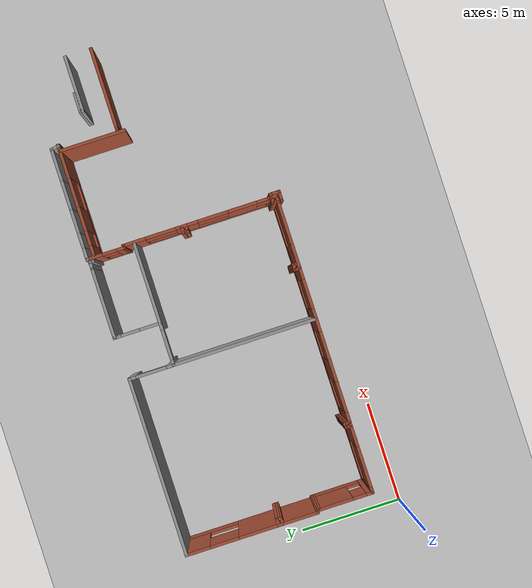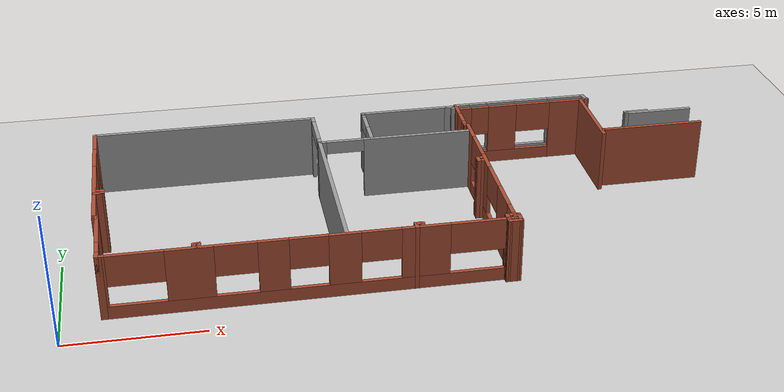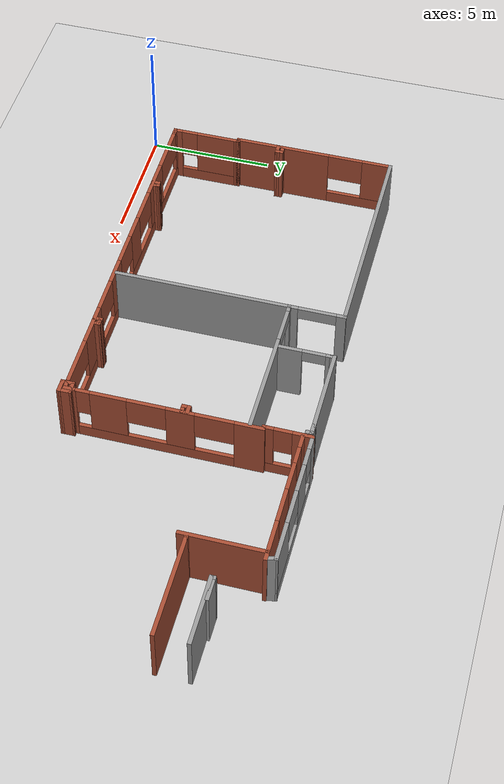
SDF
<sdf version="1.6">
 <world name="default">
  <model name="ground_plane">
   <static>1</static>
   <link name="link">
    <collision name="collision">
     <geometry><plane><normal>0 0 1</normal><size>100 100</size></plane></geometry>
     <surface><friction><ode><mu>100</mu><mu2>50</mu2></ode></friction></surface>
    </collision>
    <visual name="visual">
     <cast_shadows>0</cast_shadows>
     <geometry><plane><normal>0 0 1</normal><size>100 100</size></plane></geometry>
     <material>
      <script><uri>file://media/materials/scripts/gazebo.material</uri><name>Gazebo/Grey</name></script>
     </material>
    </visual>
   </link>
  </model>
  <model name="CVSSP">
   <pose>23.8714 24.094 0 0 -0 0</pose>
   <link name="Wall_507">
    <collision name="Wall_507_Collision">
     <geometry><box><size>3.25 0.15 2.5</size></box></geometry>
     <pose>0 0 1.25 0 -0 0</pose>
    </collision>
    <visual name="Wall_507_Visual">
     <pose>0 0 1.25 0 -0 0</pose>
     <geometry><box><size>3.25 0.15 2.5</size></box></geometry>
     <material>
      <script><uri>file://media/materials/scripts/gazebo.material</uri><name>Gazebo/Bricks</name></script>
      <ambient>1 1 1 1</ambient>
     </material>
    </visual>
    <pose>-2.87053 -15.3773 0 0 -0 1.5708</pose>
   </link>
   <link name="Wall_538">
    <pose>-5.361 -13.4582 0 0 -0 0</pose>
    <visual name="Wall_538_Visual_0">
     <pose>-2.43267 0 1.25 0 -0 0</pose>
     <geometry><box><size>0.634665 0.15 2.5</size></box></geometry>
     <material>
      <script><uri>file://media/materials/scripts/gazebo.material</uri><name>Gazebo/Grey</name></script>
      <ambient>0.588235 0.588235 0.588235 1</ambient>
     </material>
    </visual>
    <collision name="Wall_538_Collision_0">
     <geometry><box><size>0.634665 0.15 2.5</size></box></geometry>
     <pose>-2.43267 0 1.25 0 -0 0</pose>
    </collision>
    <visual name="Wall_538_Visual_1">
     <pose>0.317332 0 0.25 0 -0 0</pose>
     <geometry><box><size>4.86533 0.15 0.5</size></box></geometry>
     <material>
      <script><uri>file://media/materials/scripts/gazebo.material</uri><name>Gazebo/Grey</name></script>
      <ambient>0.588235 0.588235 0.588235 1</ambient>
     </material>
    </visual>
    <collision name="Wall_538_Collision_1">
     <geometry><box><size>4.86533 0.15 0.5</size></box></geometry>
     <pose>0.317332 0 0.25 0 -0 0</pose>
    </collision>
    <visual name="Wall_538_Visual_2">
     <pose>-0.810818 0 1.5 0 -0 0</pose>
     <geometry><box><size>1.15893 0.15 2</size></box></geometry>
     <material>
      <script><uri>file://media/materials/scripts/gazebo.material</uri><name>Gazebo/Grey</name></script>
      <ambient>0.588235 0.588235 0.588235 1</ambient>
     </material>
    </visual>
    <collision name="Wall_538_Collision_2">
     <geometry><box><size>1.15893 0.15 2</size></box></geometry>
     <pose>-0.810818 0 1.5 0 -0 0</pose>
    </collision>
    <visual name="Wall_538_Visual_3">
     <pose>1.95518 0 1.5 0 -0 0</pose>
     <geometry><box><size>1.58965 0.15 2</size></box></geometry>
     <material>
      <script><uri>file://media/materials/scripts/gazebo.material</uri><name>Gazebo/Grey</name></script>
      <ambient>0.588235 0.588235 0.588235 1</ambient>
     </material>
    </visual>
    <collision name="Wall_538_Collision_3">
     <geometry><box><size>1.58965 0.15 2</size></box></geometry>
     <pose>1.95518 0 1.5 0 -0 0</pose>
    </collision>
    <visual name="Wall_538_Visual_4">
     <pose>-1.75281 0 1.9 0 -0 0</pose>
     <geometry><box><size>0.72505 0.15 1.2</size></box></geometry>
     <material>
      <script><uri>file://media/materials/scripts/gazebo.material</uri><name>Gazebo/Grey</name></script>
      <ambient>0.588235 0.588235 0.588235 1</ambient>
     </material>
    </visual>
    <collision name="Wall_538_Collision_4">
     <geometry><box><size>0.72505 0.15 1.2</size></box></geometry>
     <pose>-1.75281 0 1.9 0 -0 0</pose>
    </collision>
    <visual name="Wall_538_Visual_5">
     <pose>0.4645 0 1.9 0 -0 0</pose>
     <geometry><box><size>1.3917 0.15 1.2</size></box></geometry>
     <material>
      <script><uri>file://media/materials/scripts/gazebo.material</uri><name>Gazebo/Grey</name></script>
      <ambient>0.588235 0.588235 0.588235 1</ambient>
     </material>
    </visual>
    <collision name="Wall_538_Collision_5">
     <geometry><box><size>1.3917 0.15 1.2</size></box></geometry>
     <pose>0.4645 0 1.9 0 -0 0</pose>
    </collision>
   </link>
   <link name="Wall_539">
    <collision name="Wall_539_Collision">
     <geometry><box><size>0.505851 0.15 2.5</size></box></geometry>
     <pose>0 0 1.25 0 -0 0</pose>
    </collision>
    <visual name="Wall_539_Visual">
     <pose>0 0 1.25 0 -0 0</pose>
     <geometry><box><size>0.505851 0.15 2.5</size></box></geometry>
     <material>
      <script><uri>file://media/materials/scripts/gazebo.material</uri><name>Gazebo/Grey</name></script>
      <ambient>1 1 1 1</ambient>
     </material>
    </visual>
    <pose>-2.64978 -13.6324 0 0 0 -1.3658</pose>
   </link>
   <link name="Wall_541">
    <pose>-8.03948 -14.3557 0 0 0 -1.57468</pose>
    <visual name="Wall_541_Visual_0">
     <pose>-0.567331 0 1.25 0 -0 0</pose>
     <geometry><box><size>0.810426 0.15 2.5</size></box></geometry>
     <material>
      <script><uri>file://media/materials/scripts/gazebo.material</uri><name>Gazebo/Bricks</name></script>
      <ambient>1 1 1 1</ambient>
     </material>
    </visual>
    <collision name="Wall_541_Collision_0">
     <geometry><box><size>0.810426 0.15 2.5</size></box></geometry>
     <pose>-0.567331 0 1.25 0 -0 0</pose>
    </collision>
    <visual name="Wall_541_Visual_1">
     <pose>0.405213 0 0.25 0 -0 0</pose>
     <geometry><box><size>1.13466 0.15 0.5</size></box></geometry>
     <material>
      <script><uri>file://media/materials/scripts/gazebo.material</uri><name>Gazebo/Bricks</name></script>
      <ambient>1 1 1 1</ambient>
     </material>
    </visual>
    <collision name="Wall_541_Collision_1">
     <geometry><box><size>1.13466 0.15 0.5</size></box></geometry>
     <pose>0.405213 0 0.25 0 -0 0</pose>
    </collision>
    <visual name="Wall_541_Visual_2">
     <pose>0.750947 0 1.5 0 -0 0</pose>
     <geometry><box><size>0.443194 0.15 2</size></box></geometry>
     <material>
      <script><uri>file://media/materials/scripts/gazebo.material</uri><name>Gazebo/Bricks</name></script>
      <ambient>1 1 1 1</ambient>
     </material>
    </visual>
    <collision name="Wall_541_Collision_2">
     <geometry><box><size>0.443194 0.15 2</size></box></geometry>
     <pose>0.750947 0 1.5 0 -0 0</pose>
    </collision>
    <visual name="Wall_541_Visual_3">
     <pose>0.183616 0 1.9 0 -0 0</pose>
     <geometry><box><size>0.691468 0.15 1.2</size></box></geometry>
     <material>
      <script><uri>file://media/materials/scripts/gazebo.material</uri><name>Gazebo/Bricks</name></script>
      <ambient>1 1 1 1</ambient>
     </material>
    </visual>
    <collision name="Wall_541_Collision_3">
     <geometry><box><size>0.691468 0.15 1.2</size></box></geometry>
     <pose>0.183616 0 1.9 0 -0 0</pose>
    </collision>
   </link>
   <link name="Wall_542">
    <collision name="Wall_542_Collision">
     <geometry><box><size>0.25 0.15 2.5</size></box></geometry>
     <pose>0 0 1.25 0 -0 0</pose>
    </collision>
    <visual name="Wall_542_Visual">
     <pose>0 0 1.25 0 -0 0</pose>
     <geometry><box><size>0.25 0.15 2.5</size></box></geometry>
     <material>
      <script><uri>file://media/materials/scripts/gazebo.material</uri><name>Gazebo/Bricks</name></script>
      <ambient>1 1 1 1</ambient>
     </material>
    </visual>
    <pose>-7.99297 -15.2533 0 0 -0 0</pose>
   </link>
   <link name="Wall_543">
    <pose>-7.94297 -18.8033 0 0 0 -1.5708</pose>
    <visual name="Wall_543_Visual_0">
     <pose>-3.05686 0 1.25 0 -0 0</pose>
     <geometry><box><size>1.13628 0.15 2.5</size></box></geometry>
     <material>
      <script><uri>file://media/materials/scripts/gazebo.material</uri><name>Gazebo/Bricks</name></script>
      <ambient>1 1 1 1</ambient>
     </material>
    </visual>
    <collision name="Wall_543_Collision_0">
     <geometry><box><size>1.13628 0.15 2.5</size></box></geometry>
     <pose>-3.05686 0 1.25 0 -0 0</pose>
    </collision>
    <visual name="Wall_543_Visual_1">
     <pose>0.568139 0 0.25 0 -0 0</pose>
     <geometry><box><size>6.11372 0.15 0.5</size></box></geometry>
     <material>
      <script><uri>file://media/materials/scripts/gazebo.material</uri><name>Gazebo/Bricks</name></script>
      <ambient>1 1 1 1</ambient>
     </material>
    </visual>
    <collision name="Wall_543_Collision_1">
     <geometry><box><size>6.11372 0.15 0.5</size></box></geometry>
     <pose>0.568139 0 0.25 0 -0 0</pose>
    </collision>
    <visual name="Wall_543_Visual_2">
     <pose>-0.462946 0 1.5 0 -0 0</pose>
     <geometry><box><size>1.07655 0.15 2</size></box></geometry>
     <material>
      <script><uri>file://media/materials/scripts/gazebo.material</uri><name>Gazebo/Bricks</name></script>
      <ambient>1 1 1 1</ambient>
     </material>
    </visual>
    <collision name="Wall_543_Collision_2">
     <geometry><box><size>1.07655 0.15 2</size></box></geometry>
     <pose>-0.462946 0 1.5 0 -0 0</pose>
    </collision>
    <visual name="Wall_543_Visual_3">
     <pose>2.25573 0 1.5 0 -0 0</pose>
     <geometry><box><size>1.39706 0.15 2</size></box></geometry>
     <material>
      <script><uri>file://media/materials/scripts/gazebo.material</uri><name>Gazebo/Bricks</name></script>
      <ambient>1 1 1 1</ambient>
     </material>
    </visual>
    <collision name="Wall_543_Collision_3">
     <geometry><box><size>1.39706 0.15 2</size></box></geometry>
     <pose>2.25573 0 1.5 0 -0 0</pose>
    </collision>
    <visual name="Wall_543_Visual_4">
     <pose>2.25573 0 1.5 0 -0 0</pose>
     <geometry><box><size>1.39706 0.15 2</size></box></geometry>
     <material>
      <script><uri>file://media/materials/scripts/gazebo.material</uri><name>Gazebo/Bricks</name></script>
      <ambient>1 1 1 1</ambient>
     </material>
    </visual>
    <collision name="Wall_543_Collision_4">
     <geometry><box><size>1.39706 0.15 2</size></box></geometry>
     <pose>2.25573 0 1.5 0 -0 0</pose>
    </collision>
    <visual name="Wall_543_Visual_5">
     <pose>-1.74497 0 1.9 0 -0 0</pose>
     <geometry><box><size>1.4875 0.15 1.2</size></box></geometry>
     <material>
      <script><uri>file://media/materials/scripts/gazebo.material</uri><name>Gazebo/Bricks</name></script>
      <ambient>1 1 1 1</ambient>
     </material>
    </visual>
    <collision name="Wall_543_Collision_5">
     <geometry><box><size>1.4875 0.15 1.2</size></box></geometry>
     <pose>-1.74497 0 1.9 0 -0 0</pose>
    </collision>
    <visual name="Wall_543_Visual_6">
     <pose>0.816261 0 1.9 0 -0 0</pose>
     <geometry><box><size>1.48187 0.15 1.2</size></box></geometry>
     <material>
      <script><uri>file://media/materials/scripts/gazebo.material</uri><name>Gazebo/Bricks</name></script>
      <ambient>1 1 1 1</ambient>
     </material>
    </visual>
    <collision name="Wall_543_Collision_6">
     <geometry><box><size>1.48187 0.15 1.2</size></box></geometry>
     <pose>0.816261 0 1.9 0 -0 0</pose>
    </collision>
    <visual name="Wall_543_Visual_7">
     <pose>3.28963 0 1.9 0 -0 0</pose>
     <geometry><box><size>0.670742 0.15 1.2</size></box></geometry>
     <material>
      <script><uri>file://media/materials/scripts/gazebo.material</uri><name>Gazebo/Bricks</name></script>
      <ambient>1 1 1 1</ambient>
     </material>
    </visual>
    <collision name="Wall_543_Collision_7">
     <geometry><box><size>0.670742 0.15 1.2</size></box></geometry>
     <pose>3.28963 0 1.9 0 -0 0</pose>
    </collision>
    <visual name="Wall_543_Visual_8">
     <pose>3.28963 0 1.9 0 -0 0</pose>
     <geometry><box><size>0.670742 0.15 1.2</size></box></geometry>
     <material>
      <script><uri>file://media/materials/scripts/gazebo.material</uri><name>Gazebo/Bricks</name></script>
      <ambient>1 1 1 1</ambient>
     </material>
    </visual>
    <collision name="Wall_543_Collision_8">
     <geometry><box><size>0.670742 0.15 1.2</size></box></geometry>
     <pose>3.28963 0 1.9 0 -0 0</pose>
    </collision>
   </link>
   <link name="Wall_544">
    <collision name="Wall_544_Collision">
     <geometry><box><size>0.5 0.15 2.5</size></box></geometry>
     <pose>0 0 1.25 0 -0 0</pose>
    </collision>
    <visual name="Wall_544_Visual">
     <pose>0 0 1.25 0 -0 0</pose>
     <geometry><box><size>0.5 0.15 2.5</size></box></geometry>
     <material>
      <script><uri>file://media/materials/scripts/gazebo.material</uri><name>Gazebo/Bricks</name></script>
      <ambient>1 1 1 1</ambient>
     </material>
    </visual>
    <pose>-7.94297 -22.5283 0 0 0 -1.5708</pose>
   </link>
   <link name="Wall_545">
    <pose>-15.118 -22.7033 0 0 -0 3.14159</pose>
    <visual name="Wall_545_Visual_0">
     <pose>-7.03884 0 1.25 0 -0 0</pose>
     <geometry><box><size>0.42232 0.15 2.5</size></box></geometry>
     <material>
      <script><uri>file://media/materials/scripts/gazebo.material</uri><name>Gazebo/Bricks</name></script>
      <ambient>1 1 1 1</ambient>
     </material>
    </visual>
    <collision name="Wall_545_Collision_0">
     <geometry><box><size>0.42232 0.15 2.5</size></box></geometry>
     <pose>-7.03884 0 1.25 0 -0 0</pose>
    </collision>
    <visual name="Wall_545_Visual_1">
     <pose>0.21116 0 0.25 0 -0 0</pose>
     <geometry><box><size>14.0777 0.15 0.5</size></box></geometry>
     <material>
      <script><uri>file://media/materials/scripts/gazebo.material</uri><name>Gazebo/Bricks</name></script>
      <ambient>1 1 1 1</ambient>
     </material>
    </visual>
    <collision name="Wall_545_Collision_1">
     <geometry><box><size>14.0777 0.15 0.5</size></box></geometry>
     <pose>0.21116 0 0.25 0 -0 0</pose>
    </collision>
    <visual name="Wall_545_Visual_2">
     <pose>-3.98026 0 1.5 0 -0 0</pose>
     <geometry><box><size>1.72991 0.15 2</size></box></geometry>
     <material>
      <script><uri>file://media/materials/scripts/gazebo.material</uri><name>Gazebo/Bricks</name></script>
      <ambient>1 1 1 1</ambient>
     </material>
    </visual>
    <collision name="Wall_545_Collision_2">
     <geometry><box><size>1.72991 0.15 2</size></box></geometry>
     <pose>-3.98026 0 1.5 0 -0 0</pose>
    </collision>
    <visual name="Wall_545_Visual_3">
     <pose>-1.12108 0 1.5 0 -0 0</pose>
     <geometry><box><size>1.14417 0.15 2</size></box></geometry>
     <material>
      <script><uri>file://media/materials/scripts/gazebo.material</uri><name>Gazebo/Bricks</name></script>
      <ambient>1 1 1 1</ambient>
     </material>
    </visual>
    <collision name="Wall_545_Collision_3">
     <geometry><box><size>1.14417 0.15 2</size></box></geometry>
     <pose>-1.12108 0 1.5 0 -0 0</pose>
    </collision>
    <visual name="Wall_545_Visual_4">
     <pose>1.34801 0 1.5 0 -0 0</pose>
     <geometry><box><size>1.07936 0.15 2</size></box></geometry>
     <material>
      <script><uri>file://media/materials/scripts/gazebo.material</uri><name>Gazebo/Bricks</name></script>
      <ambient>1 1 1 1</ambient>
     </material>
    </visual>
    <collision name="Wall_545_Collision_4">
     <geometry><box><size>1.07936 0.15 2</size></box></geometry>
     <pose>1.34801 0 1.5 0 -0 0</pose>
    </collision>
    <visual name="Wall_545_Visual_5">
     <pose>4.2027 0 1.5 0 -0 0</pose>
     <geometry><box><size>1.66909 0.15 2</size></box></geometry>
     <material>
      <script><uri>file://media/materials/scripts/gazebo.material</uri><name>Gazebo/Bricks</name></script>
      <ambient>1 1 1 1</ambient>
     </material>
    </visual>
    <collision name="Wall_545_Collision_5">
     <geometry><box><size>1.66909 0.15 2</size></box></geometry>
     <pose>4.2027 0 1.5 0 -0 0</pose>
    </collision>
    <visual name="Wall_545_Visual_6">
     <pose>7.13335 0 1.5 0 -0 0</pose>
     <geometry><box><size>0.233292 0.15 2</size></box></geometry>
     <material>
      <script><uri>file://media/materials/scripts/gazebo.material</uri><name>Gazebo/Bricks</name></script>
      <ambient>1 1 1 1</ambient>
     </material>
    </visual>
    <collision name="Wall_545_Collision_6">
     <geometry><box><size>0.233292 0.15 2</size></box></geometry>
     <pose>7.13335 0 1.5 0 -0 0</pose>
    </collision>
    <visual name="Wall_545_Visual_7">
     <pose>-5.83645 0 1.9 0 -0 0</pose>
     <geometry><box><size>1.98247 0.15 1.2</size></box></geometry>
     <material>
      <script><uri>file://media/materials/scripts/gazebo.material</uri><name>Gazebo/Bricks</name></script>
      <ambient>1 1 1 1</ambient>
     </material>
    </visual>
    <collision name="Wall_545_Collision_7">
     <geometry><box><size>1.98247 0.15 1.2</size></box></geometry>
     <pose>-5.83645 0 1.9 0 -0 0</pose>
    </collision>
    <visual name="Wall_545_Visual_8">
     <pose>-2.40424 0 1.9 0 -0 0</pose>
     <geometry><box><size>1.42213 0.15 1.2</size></box></geometry>
     <material>
      <script><uri>file://media/materials/scripts/gazebo.material</uri><name>Gazebo/Bricks</name></script>
      <ambient>1 1 1 1</ambient>
     </material>
    </visual>
    <collision name="Wall_545_Collision_8">
     <geometry><box><size>1.42213 0.15 1.2</size></box></geometry>
     <pose>-2.40424 0 1.9 0 -0 0</pose>
    </collision>
    <visual name="Wall_545_Visual_9">
     <pose>0.129664 0 1.9 0 -0 0</pose>
     <geometry><box><size>1.35733 0.15 1.2</size></box></geometry>
     <material>
      <script><uri>file://media/materials/scripts/gazebo.material</uri><name>Gazebo/Bricks</name></script>
      <ambient>1 1 1 1</ambient>
     </material>
    </visual>
    <collision name="Wall_545_Collision_9">
     <geometry><box><size>1.35733 0.15 1.2</size></box></geometry>
     <pose>0.129664 0 1.9 0 -0 0</pose>
    </collision>
    <visual name="Wall_545_Visual_10">
     <pose>2.62792 0 1.9 0 -0 0</pose>
     <geometry><box><size>1.48046 0.15 1.2</size></box></geometry>
     <material>
      <script><uri>file://media/materials/scripts/gazebo.material</uri><name>Gazebo/Bricks</name></script>
      <ambient>1 1 1 1</ambient>
     </material>
    </visual>
    <collision name="Wall_545_Collision_10">
     <geometry><box><size>1.48046 0.15 1.2</size></box></geometry>
     <pose>2.62792 0 1.9 0 -0 0</pose>
    </collision>
    <visual name="Wall_545_Visual_11">
     <pose>6.02698 0 1.9 0 -0 0</pose>
     <geometry><box><size>1.97946 0.15 1.2</size></box></geometry>
     <material>
      <script><uri>file://media/materials/scripts/gazebo.material</uri><name>Gazebo/Bricks</name></script>
      <ambient>1 1 1 1</ambient>
     </material>
    </visual>
    <collision name="Wall_545_Collision_11">
     <geometry><box><size>1.97946 0.15 1.2</size></box></geometry>
     <pose>6.02698 0 1.9 0 -0 0</pose>
    </collision>
   </link>
   <link name="Wall_546">
    <collision name="Wall_546_Collision">
     <geometry><box><size>0.25 0.15 2.5</size></box></geometry>
     <pose>0 0 1.25 0 -0 0</pose>
    </collision>
    <visual name="Wall_546_Visual">
     <pose>0 0 1.25 0 -0 0</pose>
     <geometry><box><size>0.25 0.15 2.5</size></box></geometry>
     <material>
      <script><uri>file://media/materials/scripts/gazebo.material</uri><name>Gazebo/Bricks</name></script>
      <ambient>1 1 1 1</ambient>
     </material>
    </visual>
    <pose>-22.343 -22.7033 0 0 -0 3.14159</pose>
   </link>
   <link name="Wall_547">
    <pose>-22.393 -21.4033 0 0 -0 1.5708</pose>
    <visual name="Wall_547_Visual_0">
     <pose>-1.18725 0 1.25 0 -0 0</pose>
     <geometry><box><size>0.375498 0.15 2.5</size></box></geometry>
     <material>
      <script><uri>file://media/materials/scripts/gazebo.material</uri><name>Gazebo/Bricks</name></script>
      <ambient>1 1 1 1</ambient>
     </material>
    </visual>
    <collision name="Wall_547_Collision_0">
     <geometry><box><size>0.375498 0.15 2.5</size></box></geometry>
     <pose>-1.18725 0 1.25 0 -0 0</pose>
    </collision>
    <visual name="Wall_547_Visual_1">
     <pose>0.187749 0 0.25 0 -0 0</pose>
     <geometry><box><size>2.3745 0.15 0.5</size></box></geometry>
     <material>
      <script><uri>file://media/materials/scripts/gazebo.material</uri><name>Gazebo/Bricks</name></script>
      <ambient>1 1 1 1</ambient>
     </material>
    </visual>
    <collision name="Wall_547_Collision_1">
     <geometry><box><size>2.3745 0.15 0.5</size></box></geometry>
     <pose>0.187749 0 0.25 0 -0 0</pose>
    </collision>
    <visual name="Wall_547_Visual_2">
     <pose>0.509982 0 1.5 0 -0 0</pose>
     <geometry><box><size>1.73004 0.15 2</size></box></geometry>
     <material>
      <script><uri>file://media/materials/scripts/gazebo.material</uri><name>Gazebo/Bricks</name></script>
      <ambient>1 1 1 1</ambient>
     </material>
    </visual>
    <collision name="Wall_547_Collision_2">
     <geometry><box><size>1.73004 0.15 2</size></box></geometry>
     <pose>0.509982 0 1.5 0 -0 0</pose>
    </collision>
    <visual name="Wall_547_Visual_3">
     <pose>-0.677269 0 1.9 0 -0 0</pose>
     <geometry><box><size>0.644466 0.15 1.2</size></box></geometry>
     <material>
      <script><uri>file://media/materials/scripts/gazebo.material</uri><name>Gazebo/Bricks</name></script>
      <ambient>1 1 1 1</ambient>
     </material>
    </visual>
    <collision name="Wall_547_Collision_3">
     <geometry><box><size>0.644466 0.15 1.2</size></box></geometry>
     <pose>-0.677269 0 1.9 0 -0 0</pose>
    </collision>
   </link>
   <link name="Wall_548">
    <collision name="Wall_548_Collision">
     <geometry><box><size>0.25 0.15 2.5</size></box></geometry>
     <pose>0 0 1.25 0 -0 0</pose>
    </collision>
    <visual name="Wall_548_Visual">
     <pose>0 0 1.25 0 -0 0</pose>
     <geometry><box><size>0.25 0.15 2.5</size></box></geometry>
     <material>
      <script><uri>file://media/materials/scripts/gazebo.material</uri><name>Gazebo/Bricks</name></script>
      <ambient>1 1 1 1</ambient>
     </material>
    </visual>
    <pose>-22.393 -20.0533 0 0 -0 1.5708</pose>
   </link>
   <link name="Wall_549">
    <collision name="Wall_549_Collision">
     <geometry><box><size>0.25 0.15 2.5</size></box></geometry>
     <pose>0 0 1.25 0 -0 0</pose>
    </collision>
    <visual name="Wall_549_Visual">
     <pose>0 0 1.25 0 -0 0</pose>
     <geometry><box><size>0.25 0.15 2.5</size></box></geometry>
     <material>
      <script><uri>file://media/materials/scripts/gazebo.material</uri><name>Gazebo/Bricks</name></script>
      <ambient>1 1 1 1</ambient>
     </material>
    </visual>
    <pose>-22.443 -20.0033 0 0 -0 3.14159</pose>
   </link>
   <link name="Wall_550">
    <pose>-22.493 -16.8108 0 0 -0 1.5708</pose>
    <visual name="Wall_550_Visual_0">
     <pose>-1.31523 0 1.25 0 -0 0</pose>
     <geometry><box><size>3.90453 0.15 2.5</size></box></geometry>
     <material>
      <script><uri>file://media/materials/scripts/gazebo.material</uri><name>Gazebo/Bricks</name></script>
      <ambient>1 1 1 1</ambient>
     </material>
    </visual>
    <collision name="Wall_550_Collision_0">
     <geometry><box><size>3.90453 0.15 2.5</size></box></geometry>
     <pose>-1.31523 0 1.25 0 -0 0</pose>
    </collision>
    <visual name="Wall_550_Visual_1">
     <pose>1.95226 0 0.25 0 -0 0</pose>
     <geometry><box><size>2.63045 0.15 0.5</size></box></geometry>
     <material>
      <script><uri>file://media/materials/scripts/gazebo.material</uri><name>Gazebo/Bricks</name></script>
      <ambient>1 1 1 1</ambient>
     </material>
    </visual>
    <collision name="Wall_550_Collision_1">
     <geometry><box><size>2.63045 0.15 0.5</size></box></geometry>
     <pose>1.95226 0 0.25 0 -0 0</pose>
    </collision>
    <visual name="Wall_550_Visual_2">
     <pose>2.66009 0 1.5 0 -0 0</pose>
     <geometry><box><size>1.2148 0.15 2</size></box></geometry>
     <material>
      <script><uri>file://media/materials/scripts/gazebo.material</uri><name>Gazebo/Bricks</name></script>
      <ambient>1 1 1 1</ambient>
     </material>
    </visual>
    <collision name="Wall_550_Collision_2">
     <geometry><box><size>1.2148 0.15 2</size></box></geometry>
     <pose>2.66009 0 1.5 0 -0 0</pose>
    </collision>
    <visual name="Wall_550_Visual_3">
     <pose>1.34487 0 1.9 0 -0 0</pose>
     <geometry><box><size>1.41565 0.15 1.2</size></box></geometry>
     <material>
      <script><uri>file://media/materials/scripts/gazebo.material</uri><name>Gazebo/Bricks</name></script>
      <ambient>1 1 1 1</ambient>
     </material>
    </visual>
    <collision name="Wall_550_Collision_3">
     <geometry><box><size>1.41565 0.15 1.2</size></box></geometry>
     <pose>1.34487 0 1.9 0 -0 0</pose>
    </collision>
   </link>
   <link name="Wall_551">
    <collision name="Wall_551_Collision">
     <geometry><box><size>8.71502 0.15 2.5</size></box></geometry>
     <pose>0 0 1.25 0 -0 0</pose>
    </collision>
    <visual name="Wall_551_Visual">
     <pose>0 0 1.25 0 -0 0</pose>
     <geometry><box><size>8.71502 0.15 2.5</size></box></geometry>
     <material>
      <script><uri>file://media/materials/scripts/gazebo.material</uri><name>Gazebo/Grey</name></script>
      <ambient>0.588235 0.588235 0.588235 1</ambient>
     </material>
    </visual>
    <pose>-18.2105 -13.6008 0 0 -0 0</pose>
   </link>
   <link name="Wall_552">
    <pose>-13.9279 -14.6858 0 0 0 -1.57076</pose>
    <visual name="Wall_552_Visual_0">
     <pose>-0.953762 0 1.25 0 -0 0</pose>
     <geometry><box><size>0.377528 0.15 2.5</size></box></geometry>
     <material>
      <script><uri>file://media/materials/scripts/gazebo.material</uri><name>Gazebo/Grey</name></script>
      <ambient>0.588235 0.588235 0.588235 1</ambient>
     </material>
    </visual>
    <collision name="Wall_552_Collision_0">
     <geometry><box><size>0.377528 0.15 2.5</size></box></geometry>
     <pose>-0.953762 0 1.25 0 -0 0</pose>
    </collision>
    <visual name="Wall_552_Visual_1">
     <pose>0.934646 0 1.25 0 -0 0</pose>
     <geometry><box><size>0.415759 0.15 2.5</size></box></geometry>
     <material>
      <script><uri>file://media/materials/scripts/gazebo.material</uri><name>Gazebo/Grey</name></script>
      <ambient>0.588235 0.588235 0.588235 1</ambient>
     </material>
    </visual>
    <collision name="Wall_552_Collision_1">
     <geometry><box><size>0.415759 0.15 2.5</size></box></geometry>
     <pose>0.934646 0 1.25 0 -0 0</pose>
    </collision>
    <visual name="Wall_552_Visual_2">
     <pose>-0.019115 0 2.25 0 -0 0</pose>
     <geometry><box><size>1.49176 0.15 0.5</size></box></geometry>
     <material>
      <script><uri>file://media/materials/scripts/gazebo.material</uri><name>Gazebo/Grey</name></script>
      <ambient>0.588235 0.588235 0.588235 1</ambient>
     </material>
    </visual>
    <collision name="Wall_552_Collision_2">
     <geometry><box><size>1.49176 0.15 0.5</size></box></geometry>
     <pose>-0.019115 0 2.25 0 -0 0</pose>
    </collision>
   </link>
   <link name="Wall_553">
    <pose>-10.9854 -15.7533 0 0 0 -3e-06</pose>
    <visual name="Wall_553_Visual_0">
     <pose>-2.85002 0 1.25 0 -0 0</pose>
     <geometry><box><size>0.334935 0.15 2.5</size></box></geometry>
     <material>
      <script><uri>file://media/materials/scripts/gazebo.material</uri><name>Gazebo/Grey</name></script>
      <ambient>0.588235 0.588235 0.588235 1</ambient>
     </material>
    </visual>
    <collision name="Wall_553_Collision_0">
     <geometry><box><size>0.334935 0.15 2.5</size></box></geometry>
     <pose>-2.85002 0 1.25 0 -0 0</pose>
    </collision>
    <visual name="Wall_553_Visual_1">
     <pose>0.893624 0 1.25 0 -0 0</pose>
     <geometry><box><size>4.24773 0.15 2.5</size></box></geometry>
     <material>
      <script><uri>file://media/materials/scripts/gazebo.material</uri><name>Gazebo/Grey</name></script>
      <ambient>0.588235 0.588235 0.588235 1</ambient>
     </material>
    </visual>
    <collision name="Wall_553_Collision_1">
     <geometry><box><size>4.24773 0.15 2.5</size></box></geometry>
     <pose>0.893624 0 1.25 0 -0 0</pose>
    </collision>
    <visual name="Wall_553_Visual_2">
     <pose>-1.9564 0 2.25 0 -0 0</pose>
     <geometry><box><size>1.45231 0.15 0.5</size></box></geometry>
     <material>
      <script><uri>file://media/materials/scripts/gazebo.material</uri><name>Gazebo/Grey</name></script>
      <ambient>0.588235 0.588235 0.588235 1</ambient>
     </material>
    </visual>
    <collision name="Wall_553_Collision_2">
     <geometry><box><size>1.45231 0.15 0.5</size></box></geometry>
     <pose>-1.9564 0 2.25 0 -0 0</pose>
    </collision>
   </link>
   <link name="Wall_566">
    <pose>-11.8858 -14.6877 0 0 -0 1.5708</pose>
    <visual name="Wall_566_Visual_0">
     <pose>-0.599474 0 1.25 0 -0 0</pose>
     <geometry><box><size>1.05105 0.15 2.5</size></box></geometry>
     <material>
      <script><uri>file://media/materials/scripts/gazebo.material</uri><name>Gazebo/Grey</name></script>
      <ambient>0.588235 0.588235 0.588235 1</ambient>
     </material>
    </visual>
    <collision name="Wall_566_Collision_0">
     <geometry><box><size>1.05105 0.15 2.5</size></box></geometry>
     <pose>-0.599474 0 1.25 0 -0 0</pose>
    </collision>
    <visual name="Wall_566_Visual_1">
     <pose>0.975526 0 1.25 0 -0 0</pose>
     <geometry><box><size>0.298948 0.15 2.5</size></box></geometry>
     <material>
      <script><uri>file://media/materials/scripts/gazebo.material</uri><name>Gazebo/Grey</name></script>
      <ambient>0.588235 0.588235 0.588235 1</ambient>
     </material>
    </visual>
    <collision name="Wall_566_Collision_1">
     <geometry><box><size>0.298948 0.15 2.5</size></box></geometry>
     <pose>0.975526 0 1.25 0 -0 0</pose>
    </collision>
    <visual name="Wall_566_Visual_2">
     <pose>0.376052 0 2.25 0 -0 0</pose>
     <geometry><box><size>0.9 0.15 0.5</size></box></geometry>
     <material>
      <script><uri>file://media/materials/scripts/gazebo.material</uri><name>Gazebo/Grey</name></script>
      <ambient>0.588235 0.588235 0.588235 1</ambient>
     </material>
    </visual>
    <collision name="Wall_566_Collision_2">
     <geometry><box><size>0.9 0.15 0.5</size></box></geometry>
     <pose>0.376052 0 2.25 0 -0 0</pose>
    </collision>
   </link>
   <link name="Wall_567">
    <collision name="Wall_567_Collision">
     <geometry><box><size>0.25 0.15 2.5</size></box></geometry>
     <pose>0 0 1.25 0 -0 0</pose>
    </collision>
    <visual name="Wall_567_Visual">
     <pose>0 0 1.25 0 -0 0</pose>
     <geometry><box><size>0.25 0.15 2.5</size></box></geometry>
     <material>
      <script><uri>file://media/materials/scripts/gazebo.material</uri><name>Gazebo/Grey</name></script>
      <ambient>1 1 1 1</ambient>
     </material>
    </visual>
    <pose>-11.8858 -13.5877 0 0 -0 1.5708</pose>
   </link>
   <link name="Wall_568">
    <collision name="Wall_568_Collision">
     <geometry><box><size>3.5 0.15 2.5</size></box></geometry>
     <pose>0 0 1.25 0 -0 0</pose>
    </collision>
    <visual name="Wall_568_Visual">
     <pose>0 0 1.25 0 -0 0</pose>
     <geometry><box><size>3.5 0.15 2.5</size></box></geometry>
     <material>
      <script><uri>file://media/materials/scripts/gazebo.material</uri><name>Gazebo/Grey</name></script>
      <ambient>0.588235 0.588235 0.588235 1</ambient>
     </material>
    </visual>
    <pose>-10.2108 -13.5377 0 0 -0 0</pose>
   </link>
   <link name="Wall_569">
    <collision name="Wall_569_Collision">
     <geometry><box><size>0.476583 0.15 2.5</size></box></geometry>
     <pose>0 0 1.25 0 -0 0</pose>
    </collision>
    <visual name="Wall_569_Visual">
     <pose>0 0 1.25 0 -0 0</pose>
     <geometry><box><size>0.476583 0.15 2.5</size></box></geometry>
     <material>
      <script><uri>file://media/materials/scripts/gazebo.material</uri><name>Gazebo/Grey</name></script>
      <ambient>1 1 1 1</ambient>
     </material>
    </visual>
    <pose>-8.37248 -13.54 0 0 0 -0.014239</pose>
   </link>
   <link name="Wall_570">
    <collision name="Wall_570_Collision">
     <geometry><box><size>0.307067 0.15 2.5</size></box></geometry>
     <pose>0 0 1.25 0 -0 0</pose>
    </collision>
    <visual name="Wall_570_Visual">
     <pose>0 0 1.25 0 -0 0</pose>
     <geometry><box><size>0.307067 0.15 2.5</size></box></geometry>
     <material>
      <script><uri>file://media/materials/scripts/gazebo.material</uri><name>Gazebo/Grey</name></script>
      <ambient>1 1 1 1</ambient>
     </material>
    </visual>
    <pose>-8.20921 -13.6208 0 0 0 -1.5708</pose>
   </link>
   <link name="Wall_571">
    <collision name="Wall_571_Collision">
     <geometry><box><size>0.25 0.15 2.5</size></box></geometry>
     <pose>0 0 1.25 0 -0 0</pose>
    </collision>
    <visual name="Wall_571_Visual">
     <pose>0 0 1.25 0 -0 0</pose>
     <geometry><box><size>0.25 0.15 2.5</size></box></geometry>
     <material>
      <script><uri>file://media/materials/scripts/gazebo.material</uri><name>Gazebo/Grey</name></script>
      <ambient>1 1 1 1</ambient>
     </material>
    </visual>
    <pose>-8.15921 -13.695 0 0 -0 0</pose>
   </link>
   <link name="Wall_578">
    <collision name="Wall_578_Collision">
     <geometry><box><size>7 0.15 2.5</size></box></geometry>
     <pose>0 0 1.25 0 -0 0</pose>
    </collision>
    <visual name="Wall_578_Visual">
     <pose>0 0 1.25 0 -0 0</pose>
     <geometry><box><size>7 0.15 2.5</size></box></geometry>
     <material>
      <script><uri>file://media/materials/scripts/gazebo.material</uri><name>Gazebo/Grey</name></script>
      <ambient>0.588235 0.588235 0.588235 1</ambient>
     </material>
    </visual>
    <pose>-13.9279 -19.1783 0 0 0 -1.5708</pose>
   </link>
   <link name="Wall_596">
    <collision name="Wall_596_Collision">
     <geometry><box><size>4 0.15 2.5</size></box></geometry>
     <pose>0 0 1.25 0 -0 0</pose>
    </collision>
    <visual name="Wall_596_Visual">
     <pose>0 0 1.25 0 -0 0</pose>
     <geometry><box><size>4 0.15 2.5</size></box></geometry>
     <material>
      <script><uri>file://media/materials/scripts/gazebo.material</uri><name>Gazebo/Bricks</name></script>
      <ambient>1 1 1 1</ambient>
     </material>
    </visual>
    <pose>-0.740764 -16.6286 0 0 -0 0</pose>
   </link>
   <link name="Wall_600">
    <collision name="Wall_600_Collision">
     <geometry><box><size>2.75 0.15 2.5</size></box></geometry>
     <pose>0 0 1.25 0 -0 0</pose>
    </collision>
    <visual name="Wall_600_Visual">
     <pose>0 0 1.25 0 -0 0</pose>
     <geometry><box><size>2.75 0.15 2.5</size></box></geometry>
     <material>
      <script><uri>file://media/materials/scripts/gazebo.material</uri><name>Gazebo/Grey</name></script>
      <ambient>0.588235 0.588235 0.588235 1</ambient>
     </material>
    </visual>
    <pose>-0.115764 -15.3784 0 0 -0 3.14159</pose>
   </link>
   <link name="Wall_601">
    <collision name="Wall_601_Collision">
     <geometry><box><size>0.25 0.15 2.5</size></box></geometry>
     <pose>0 0 1.25 0 -0 0</pose>
    </collision>
    <visual name="Wall_601_Visual">
     <pose>0 0 1.25 0 -0 0</pose>
     <geometry><box><size>0.25 0.15 2.5</size></box></geometry>
     <material>
      <script><uri>file://media/materials/scripts/gazebo.material</uri><name>Gazebo/Grey</name></script>
      <ambient>1 1 1 1</ambient>
     </material>
    </visual>
    <pose>-1.41576 -15.3284 0 0 -0 1.5708</pose>
   </link>
   <link name="Wall_602">
    <collision name="Wall_602_Collision">
     <geometry><box><size>1 0.15 2.5</size></box></geometry>
     <pose>0 0 1.25 0 -0 0</pose>
    </collision>
    <visual name="Wall_602_Visual">
     <pose>0 0 1.25 0 -0 0</pose>
     <geometry><box><size>1 0.15 2.5</size></box></geometry>
     <material>
      <script><uri>file://media/materials/scripts/gazebo.material</uri><name>Gazebo/Grey</name></script>
      <ambient>0.588235 0.588235 0.588235 1</ambient>
     </material>
    </visual>
    <pose>-0.990764 -15.2784 0 0 -0 0</pose>
   </link>
   <link name="Wall_819">
    <collision name="Wall_819_Collision">
     <geometry><box><size>0.25 0.15 2.5</size></box></geometry>
     <pose>0 0 1.25 0 -0 0</pose>
    </collision>
    <visual name="Wall_819_Visual">
     <pose>0 0 1.25 0 -0 0</pose>
     <geometry><box><size>0.25 0.15 2.5</size></box></geometry>
     <material>
      <script><uri>file://media/materials/scripts/gazebo.material</uri><name>Gazebo/Bricks</name></script>
      <ambient>1 1 1 1</ambient>
     </material>
    </visual>
    <pose>-2.71576 -16.6286 0 0 -0 3.14159</pose>
   </link>
   <link name="Wall_821">
    <pose>-5.27357 -13.8066 0 0 -0 3.14159</pose>
    <visual name="Wall_821_Visual_0">
     <pose>-1.9171 0 1.25 0 -0 0</pose>
     <geometry><box><size>1.66581 0.15 2.5</size></box></geometry>
     <material>
      <script><uri>file://media/materials/scripts/gazebo.material</uri><name>Gazebo/Bricks</name></script>
      <ambient>1 1 1 1</ambient>
     </material>
    </visual>
    <collision name="Wall_821_Collision_0">
     <geometry><box><size>1.66581 0.15 2.5</size></box></geometry>
     <pose>-1.9171 0 1.25 0 -0 0</pose>
    </collision>
    <visual name="Wall_821_Visual_1">
     <pose>0.832904 0 0.25 0 -0 0</pose>
     <geometry><box><size>3.83419 0.15 0.5</size></box></geometry>
     <material>
      <script><uri>file://media/materials/scripts/gazebo.material</uri><name>Gazebo/Bricks</name></script>
      <ambient>1 1 1 1</ambient>
     </material>
    </visual>
    <collision name="Wall_821_Collision_1">
     <geometry><box><size>3.83419 0.15 0.5</size></box></geometry>
     <pose>0.832904 0 0.25 0 -0 0</pose>
    </collision>
    <visual name="Wall_821_Visual_2">
     <pose>0.892612 0 1.5 0 -0 0</pose>
     <geometry><box><size>1.1702 0.15 2</size></box></geometry>
     <material>
      <script><uri>file://media/materials/scripts/gazebo.material</uri><name>Gazebo/Bricks</name></script>
      <ambient>1 1 1 1</ambient>
     </material>
    </visual>
    <collision name="Wall_821_Collision_2">
     <geometry><box><size>1.1702 0.15 2</size></box></geometry>
     <pose>0.892612 0 1.5 0 -0 0</pose>
    </collision>
    <visual name="Wall_821_Visual_3">
     <pose>2.46889 0 1.5 0 -0 0</pose>
     <geometry><box><size>0.562226 0.15 2</size></box></geometry>
     <material>
      <script><uri>file://media/materials/scripts/gazebo.material</uri><name>Gazebo/Bricks</name></script>
      <ambient>1 1 1 1</ambient>
     </material>
    </visual>
    <collision name="Wall_821_Collision_3">
     <geometry><box><size>0.562226 0.15 2</size></box></geometry>
     <pose>2.46889 0 1.5 0 -0 0</pose>
    </collision>
    <visual name="Wall_821_Visual_4">
     <pose>-0.388341 0 1.9 0 -0 0</pose>
     <geometry><box><size>1.3917 0.15 1.2</size></box></geometry>
     <material>
      <script><uri>file://media/materials/scripts/gazebo.material</uri><name>Gazebo/Bricks</name></script>
      <ambient>1 1 1 1</ambient>
     </material>
    </visual>
    <collision name="Wall_821_Collision_4">
     <geometry><box><size>1.3917 0.15 1.2</size></box></geometry>
     <pose>-0.388341 0 1.9 0 -0 0</pose>
    </collision>
    <visual name="Wall_821_Visual_5">
     <pose>1.83274 0 1.9 0 -0 0</pose>
     <geometry><box><size>0.71006 0.15 1.2</size></box></geometry>
     <material>
      <script><uri>file://media/materials/scripts/gazebo.material</uri><name>Gazebo/Bricks</name></script>
      <ambient>1 1 1 1</ambient>
     </material>
    </visual>
    <collision name="Wall_821_Collision_5">
     <geometry><box><size>0.71006 0.15 1.2</size></box></geometry>
     <pose>1.83274 0 1.9 0 -0 0</pose>
    </collision>
   </link>
   <link name="Wall_823">
    <collision name="Wall_823_Collision">
     <geometry><box><size>0.378662 0.15 2.5</size></box></geometry>
     <pose>0 0 1.25 0 -0 0</pose>
    </collision>
    <visual name="Wall_823_Visual">
     <pose>0 0 1.25 0 -0 0</pose>
     <geometry><box><size>0.378662 0.15 2.5</size></box></geometry>
     <material>
      <script><uri>file://media/materials/scripts/gazebo.material</uri><name>Gazebo/Bricks</name></script>
      <ambient>1 1 1 1</ambient>
     </material>
    </visual>
    <pose>-8.09894 -18.0783 0 0 -0 3.14159</pose>
   </link>
   <link name="Wall_824">
    <collision name="Wall_824_Collision">
     <geometry><box><size>0.361804 0.15 2.5</size></box></geometry>
     <pose>0 0 1.25 0 -0 0</pose>
    </collision>
    <visual name="Wall_824_Visual">
     <pose>0 0 1.25 0 -0 0</pose>
     <geometry><box><size>0.361804 0.15 2.5</size></box></geometry>
     <material>
      <script><uri>file://media/materials/scripts/gazebo.material</uri><name>Gazebo/Bricks</name></script>
      <ambient>1 1 1 1</ambient>
     </material>
    </visual>
    <pose>-8.21327 -18.1839 0 0 0 -1.5708</pose>
   </link>
   <link name="Wall_825">
    <collision name="Wall_825_Collision">
     <geometry><box><size>0.396251 0.15 2.5</size></box></geometry>
     <pose>0 0 1.25 0 -0 0</pose>
    </collision>
    <visual name="Wall_825_Visual">
     <pose>0 0 1.25 0 -0 0</pose>
     <geometry><box><size>0.396251 0.15 2.5</size></box></geometry>
     <material>
      <script><uri>file://media/materials/scripts/gazebo.material</uri><name>Gazebo/Bricks</name></script>
      <ambient>1 1 1 1</ambient>
     </material>
    </visual>
    <pose>-8.09015 -18.2894 0 0 -0 0</pose>
   </link>
   <link name="Wall_827">
    <collision name="Wall_827_Collision">
     <geometry><box><size>0.554556 0.15 2.5</size></box></geometry>
     <pose>0 0 1.25 0 -0 0</pose>
    </collision>
    <visual name="Wall_827_Visual">
     <pose>0 0 1.25 0 -0 0</pose>
     <geometry><box><size>0.554556 0.15 2.5</size></box></geometry>
     <material>
      <script><uri>file://media/materials/scripts/gazebo.material</uri><name>Gazebo/Bricks</name></script>
      <ambient>1 1 1 1</ambient>
     </material>
    </visual>
    <pose>-7.99341 -22.4757 0 0 -0 0</pose>
   </link>
   <link name="Wall_828">
    <collision name="Wall_828_Collision">
     <geometry><box><size>0.553944 0.15 2.5</size></box></geometry>
     <pose>0 0 1.25 0 -0 0</pose>
    </collision>
    <visual name="Wall_828_Visual">
     <pose>0 0 1.25 0 -0 0</pose>
     <geometry><box><size>0.553944 0.15 2.5</size></box></geometry>
     <material>
      <script><uri>file://media/materials/scripts/gazebo.material</uri><name>Gazebo/Bricks</name></script>
      <ambient>1 1 1 1</ambient>
     </material>
    </visual>
    <pose>-7.78894 -22.6776 0 0 0 -1.55999</pose>
   </link>
   <link name="Wall_829">
    <collision name="Wall_829_Collision">
     <geometry><box><size>0.560707 0.15 2.5</size></box></geometry>
     <pose>0 0 1.25 0 -0 0</pose>
    </collision>
    <visual name="Wall_829_Visual">
     <pose>0 0 1.25 0 -0 0</pose>
     <geometry><box><size>0.560707 0.15 2.5</size></box></geometry>
     <material>
      <script><uri>file://media/materials/scripts/gazebo.material</uri><name>Gazebo/Bricks</name></script>
      <ambient>1 1 1 1</ambient>
     </material>
    </visual>
    <pose>-7.99208 -22.8796 0 0 -0 3.14159</pose>
   </link>
   <link name="Wall_830">
    <collision name="Wall_830_Collision">
     <geometry><box><size>0.553924 0.15 2.5</size></box></geometry>
     <pose>0 0 1.25 0 -0 0</pose>
    </collision>
    <visual name="Wall_830_Visual">
     <pose>0 0 1.25 0 -0 0</pose>
     <geometry><box><size>0.553924 0.15 2.5</size></box></geometry>
     <material>
      <script><uri>file://media/materials/scripts/gazebo.material</uri><name>Gazebo/Bricks</name></script>
      <ambient>1 1 1 1</ambient>
     </material>
    </visual>
    <pose>-8.19654 -22.6776 0 0 -0 1.56655</pose>
   </link>
   <link name="Wall_832">
    <collision name="Wall_832_Collision">
     <geometry><box><size>0.385035 0.15 2.5</size></box></geometry>
     <pose>0 0 1.25 0 -0 0</pose>
    </collision>
    <visual name="Wall_832_Visual">
     <pose>0 0 1.25 0 -0 0</pose>
     <geometry><box><size>0.385035 0.15 2.5</size></box></geometry>
     <material>
      <script><uri>file://media/materials/scripts/gazebo.material</uri><name>Gazebo/Bricks</name></script>
      <ambient>1 1 1 1</ambient>
     </material>
    </visual>
    <pose>-11.4605 -22.5865 0 0 -0 1.56414</pose>
   </link>
   <link name="Wall_833">
    <collision name="Wall_833_Collision">
     <geometry><box><size>0.378258 0.15 2.5</size></box></geometry>
     <pose>0 0 1.25 0 -0 0</pose>
    </collision>
    <visual name="Wall_833_Visual">
     <pose>0 0 1.25 0 -0 0</pose>
     <geometry><box><size>0.378258 0.15 2.5</size></box></geometry>
     <material>
      <script><uri>file://media/materials/scripts/gazebo.material</uri><name>Gazebo/Bricks</name></script>
      <ambient>1 1 1 1</ambient>
     </material>
    </visual>
    <pose>-11.3456 -22.4728 0 0 0 -0.033321</pose>
   </link>
   <link name="Wall_834">
    <collision name="Wall_834_Collision">
     <geometry><box><size>0.25 0.15 2.5</size></box></geometry>
     <pose>0 0 1.25 0 -0 0</pose>
    </collision>
    <visual name="Wall_834_Visual">
     <pose>0 0 1.25 0 -0 0</pose>
     <geometry><box><size>0.25 0.15 2.5</size></box></geometry>
     <material>
      <script><uri>file://media/materials/scripts/gazebo.material</uri><name>Gazebo/Bricks</name></script>
      <ambient>1 1 1 1</ambient>
     </material>
    </visual>
    <pose>-11.2315 -22.5266 0 0 0 -1.5708</pose>
   </link>
   <link name="Wall_836">
    <collision name="Wall_836_Collision">
     <geometry><box><size>0.429841 0.15 2.5</size></box></geometry>
     <pose>0 0 1.25 0 -0 0</pose>
    </collision>
    <visual name="Wall_836_Visual">
     <pose>0 0 1.25 0 -0 0</pose>
     <geometry><box><size>0.429841 0.15 2.5</size></box></geometry>
     <material>
      <script><uri>file://media/materials/scripts/gazebo.material</uri><name>Gazebo/Bricks</name></script>
      <ambient>1 1 1 1</ambient>
     </material>
    </visual>
    <pose>-22.3434 -18.1065 0 0 -0 0</pose>
   </link>
   <link name="Wall_837">
    <collision name="Wall_837_Collision">
     <geometry><box><size>0.333646 0.15 2.5</size></box></geometry>
     <pose>0 0 1.25 0 -0 0</pose>
    </collision>
    <visual name="Wall_837_Visual">
     <pose>0 0 1.25 0 -0 0</pose>
     <geometry><box><size>0.333646 0.15 2.5</size></box></geometry>
     <material>
      <script><uri>file://media/materials/scripts/gazebo.material</uri><name>Gazebo/Bricks</name></script>
      <ambient>1 1 1 1</ambient>
     </material>
    </visual>
    <pose>-22.2035 -18.1983 0 0 0 -1.5708</pose>
   </link>
   <link name="Wall_838">
    <collision name="Wall_838_Collision">
     <geometry><box><size>0.422362 0.15 2.5</size></box></geometry>
     <pose>0 0 1.25 0 -0 0</pose>
    </collision>
    <visual name="Wall_838_Visual">
     <pose>0 0 1.25 0 -0 0</pose>
     <geometry><box><size>0.422362 0.15 2.5</size></box></geometry>
     <material>
      <script><uri>file://media/materials/scripts/gazebo.material</uri><name>Gazebo/Bricks</name></script>
      <ambient>1 1 1 1</ambient>
     </material>
    </visual>
    <pose>-22.339 -18.2989 0 0 0 -3.07717</pose>
   </link>
   <link name="Wall_840">
    <collision name="Wall_840_Collision">
     <geometry><box><size>0.372453 0.15 2.5</size></box></geometry>
     <pose>0 0 1.25 0 -0 0</pose>
    </collision>
    <visual name="Wall_840_Visual">
     <pose>0 0 1.25 0 -0 0</pose>
     <geometry><box><size>0.372453 0.15 2.5</size></box></geometry>
     <material>
      <script><uri>file://media/materials/scripts/gazebo.material</uri><name>Gazebo/Bricks</name></script>
      <ambient>1 1 1 1</ambient>
     </material>
    </visual>
    <pose>-19.1429 -22.5861 0 0 -0 1.56181</pose>
   </link>
   <link name="Wall_841">
    <collision name="Wall_841_Collision">
     <geometry><box><size>0.321374 0.15 2.5</size></box></geometry>
     <pose>0 0 1.25 0 -0 0</pose>
    </collision>
    <visual name="Wall_841_Visual">
     <pose>0 0 1.25 0 -0 0</pose>
     <geometry><box><size>0.321374 0.15 2.5</size></box></geometry>
     <material>
      <script><uri>file://media/materials/scripts/gazebo.material</uri><name>Gazebo/Bricks</name></script>
      <ambient>1 1 1 1</ambient>
     </material>
    </visual>
    <pose>-19.0566 -22.465 0 0 -0 0.115124</pose>
   </link>
   <link name="Wall_842">
    <collision name="Wall_842_Collision">
     <geometry><box><size>0.39334 0.15 2.5</size></box></geometry>
     <pose>0 0 1.25 0 -0 0</pose>
    </collision>
    <visual name="Wall_842_Visual">
     <pose>0 0 1.25 0 -0 0</pose>
     <geometry><box><size>0.39334 0.15 2.5</size></box></geometry>
     <material>
      <script><uri>file://media/materials/scripts/gazebo.material</uri><name>Gazebo/Bricks</name></script>
      <ambient>1 1 1 1</ambient>
     </material>
    </visual>
    <pose>-18.9713 -22.5801 0 0 0 -1.5708</pose>
   </link>
   <static>1</static>
  </model>
 </world>
</sdf>
